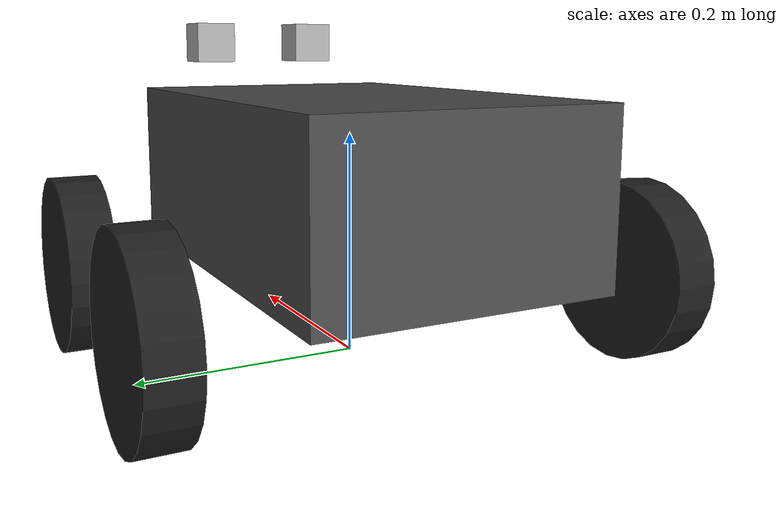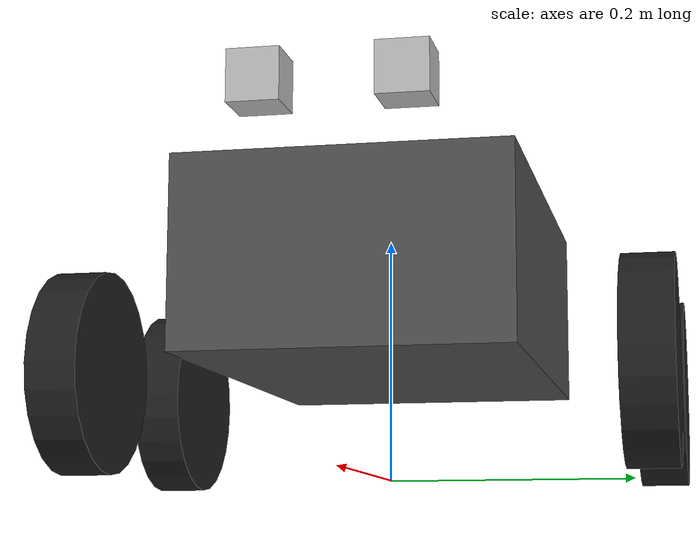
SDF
<sdf version='1.7'>
  <model name='ov_rover'>
    <link name='base_footprint'>
      <inertial>
        <pose>0 0 0.16 0 -0 0</pose>
        <mass>2.5</mass>
        <inertia>
          <ixx>0.04</ixx>
          <ixy>0</ixy>
          <ixz>0</ixz>
          <iyy>0.04</iyy>
          <iyz>0</iyz>
          <izz>0.05</izz>
        </inertia>
      </inertial>
      <collision name='base_footprint_fixed_joint_lump__base_link_collision'>
        <pose>0 0 0.16 0 -0 0</pose>
        <geometry>
          <box>
            <size>0.4 0.26 0.15</size>
          </box>
        </geometry>
        <surface>
          <contact>
            <ode/>
          </contact>
          <friction>
            <ode/>
          </friction>
        </surface>
      </collision>
      <visual name='base_footprint_fixed_joint_lump__base_link_visual'>
        <pose>0 0 0.16 0 -0 0</pose>
        <geometry>
          <box>
            <size>0.4 0.26 0.15</size>
          </box>
        </geometry>
        <material>
          <script>
            <name>Gazebo/DarkGrey</name>
            <uri>file://media/materials/scripts/gazebo.material</uri>
          </script>
        </material>
      </visual>
      <visual name='base_footprint_fixed_joint_lump__cam0_link_visual_1'>
        <pose>0.22 0.055 0.28 0 -0 0</pose>
        <geometry>
          <box>
            <size>0.04 0.04 0.04</size>
          </box>
        </geometry>
      </visual>
      <visual name='base_footprint_fixed_joint_lump__cam1_link_visual_2'>
        <pose>0.22 -0.055 0.28 0 -0 0</pose>
        <geometry>
          <box>
            <size>0.04 0.04 0.04</size>
          </box>
        </geometry>
      </visual>
      <sensor name='cam0_sensor' type='camera'>
        <always_on>1</always_on>
        <update_rate>20</update_rate>
        <camera name='cam0'>
          <horizontal_fov>1.57</horizontal_fov>
          <image>
            <width>640</width>
            <height>400</height>
            <format>R8G8B8</format>
          </image>
          <clip>
            <near>0.05</near>
            <far>50</far>
          </clip>
          <noise>
            <type>gaussian</type>
            <mean>0</mean>
            <stddev>0.0</stddev>
          </noise>
        </camera>
        <plugin name='cam0_driver' filename='libgazebo_ros_camera.so'>
          <camera_name>cam0</camera_name>
          <frame_name>cam0_link</frame_name>
        </plugin>
        <pose>0.22 0.055 0.28 0 -0 0</pose>
      </sensor>
      <sensor name='cam1_sensor' type='camera'>
        <always_on>1</always_on>
        <update_rate>20</update_rate>
        <camera name='cam1'>
          <horizontal_fov>1.57</horizontal_fov>
          <image>
            <width>640</width>
            <height>400</height>
            <format>R8G8B8</format>
          </image>
          <clip>
            <near>0.05</near>
            <far>50</far>
          </clip>
          <noise>
            <type>gaussian</type>
            <mean>0</mean>
            <stddev>0.0</stddev>
          </noise>
        </camera>
        <plugin name='cam1_driver' filename='libgazebo_ros_camera.so'>
          <camera_name>cam1</camera_name>
          <frame_name>cam1_link</frame_name>
        </plugin>
        <pose>0.22 -0.055 0.28 0 -0 0</pose>
      </sensor>
      <sensor name='imu_sensor' type='imu'>
        <always_on>1</always_on>
        <update_rate>200</update_rate>
        <imu>
          <angular_velocity>
            <x>
              <noise type='gaussian'>
                <mean>0</mean>
                <stddev>0.00017</stddev>
              </noise>
            </x>
            <y>
              <noise type='gaussian'>
                <mean>0</mean>
                <stddev>0.00017</stddev>
              </noise>
            </y>
            <z>
              <noise type='gaussian'>
                <mean>0</mean>
                <stddev>0.00017</stddev>
              </noise>
            </z>
          </angular_velocity>
          <linear_acceleration>
            <x>
              <noise type='gaussian'>
                <mean>0</mean>
                <stddev>0.002</stddev>
              </noise>
            </x>
            <y>
              <noise type='gaussian'>
                <mean>0</mean>
                <stddev>0.002</stddev>
              </noise>
            </y>
            <z>
              <noise type='gaussian'>
                <mean>0</mean>
                <stddev>0.002</stddev>
              </noise>
            </z>
          </linear_acceleration>
        </imu>
        <plugin name='imu_plugin' filename='libgazebo_ros_imu_sensor.so'>
          <ros>
            <remapping>~/out:=/imu0</remapping>
          </ros>
          <frame_name>imu_link</frame_name>
        </plugin>
        <pose>0 0 0.16 0 -0 0</pose>
      </sensor>
    </link>
    <joint name='wheel_front_left_joint' type='revolute'>
      <pose relative_to='base_footprint'>0.12 0.22 0.08 0 -0 0</pose>
      <parent>base_footprint</parent>
      <child>wheel_front_left_link</child>
      <axis>
        <xyz>0 1 0</xyz>
        <limit>
          <lower>-1e+16</lower>
          <upper>1e+16</upper>
        </limit>
        <dynamics>
          <spring_reference>0</spring_reference>
          <spring_stiffness>0</spring_stiffness>
        </dynamics>
      </axis>
    </joint>
    <link name='wheel_front_left_link'>
      <pose relative_to='wheel_front_left_joint'>0 0 0 0 -0 0</pose>
      <inertial>
        <pose>0 0 0 0 -0 0</pose>
        <mass>0.35</mass>
        <inertia>
          <ixx>0.00061</ixx>
          <ixy>0</ixy>
          <ixz>0</ixz>
          <iyy>0.00112</iyy>
          <iyz>0</iyz>
          <izz>0.00061</izz>
        </inertia>
      </inertial>
      <collision name='wheel_front_left_link_collision'>
        <pose>0 0 0 1.5708 -0 0</pose>
        <geometry>
          <cylinder>
            <length>0.04</length>
            <radius>0.08</radius>
          </cylinder>
        </geometry>
        <surface>
          <contact>
            <ode>
              <kp>1e+05</kp>
              <kd>10</kd>
            </ode>
          </contact>
          <friction>
            <ode>
              <mu>1</mu>
              <mu2>1</mu2>
            </ode>
          </friction>
        </surface>
      </collision>
      <visual name='wheel_front_left_link_visual'>
        <pose>0 0 0 1.5708 -0 0</pose>
        <geometry>
          <cylinder>
            <length>0.04</length>
            <radius>0.08</radius>
          </cylinder>
        </geometry>
        <material>
          <script>
            <name>Gazebo/Black</name>
            <uri>file://media/materials/scripts/gazebo.material</uri>
          </script>
        </material>
      </visual>
    </link>
    <joint name='wheel_front_right_joint' type='revolute'>
      <pose relative_to='base_footprint'>0.12 -0.22 0.08 0 -0 0</pose>
      <parent>base_footprint</parent>
      <child>wheel_front_right_link</child>
      <axis>
        <xyz>0 1 0</xyz>
        <limit>
          <lower>-1e+16</lower>
          <upper>1e+16</upper>
        </limit>
        <dynamics>
          <spring_reference>0</spring_reference>
          <spring_stiffness>0</spring_stiffness>
        </dynamics>
      </axis>
    </joint>
    <link name='wheel_front_right_link'>
      <pose relative_to='wheel_front_right_joint'>0 0 0 0 -0 0</pose>
      <inertial>
        <pose>0 0 0 0 -0 0</pose>
        <mass>0.35</mass>
        <inertia>
          <ixx>0.00061</ixx>
          <ixy>0</ixy>
          <ixz>0</ixz>
          <iyy>0.00112</iyy>
          <iyz>0</iyz>
          <izz>0.00061</izz>
        </inertia>
      </inertial>
      <collision name='wheel_front_right_link_collision'>
        <pose>0 0 0 1.5708 -0 0</pose>
        <geometry>
          <cylinder>
            <length>0.04</length>
            <radius>0.08</radius>
          </cylinder>
        </geometry>
        <surface>
          <contact>
            <ode>
              <kp>1e+05</kp>
              <kd>10</kd>
            </ode>
          </contact>
          <friction>
            <ode>
              <mu>1</mu>
              <mu2>1</mu2>
            </ode>
          </friction>
        </surface>
      </collision>
      <visual name='wheel_front_right_link_visual'>
        <pose>0 0 0 1.5708 -0 0</pose>
        <geometry>
          <cylinder>
            <length>0.04</length>
            <radius>0.08</radius>
          </cylinder>
        </geometry>
        <material>
          <script>
            <name>Gazebo/Black</name>
            <uri>file://media/materials/scripts/gazebo.material</uri>
          </script>
        </material>
      </visual>
    </link>
    <joint name='wheel_rear_left_joint' type='revolute'>
      <pose relative_to='base_footprint'>-0.12 0.22 0.08 0 -0 0</pose>
      <parent>base_footprint</parent>
      <child>wheel_rear_left_link</child>
      <axis>
        <xyz>0 1 0</xyz>
        <limit>
          <lower>-1e+16</lower>
          <upper>1e+16</upper>
        </limit>
        <dynamics>
          <spring_reference>0</spring_reference>
          <spring_stiffness>0</spring_stiffness>
        </dynamics>
      </axis>
    </joint>
    <link name='wheel_rear_left_link'>
      <pose relative_to='wheel_rear_left_joint'>0 0 0 0 -0 0</pose>
      <inertial>
        <pose>0 0 0 0 -0 0</pose>
        <mass>0.35</mass>
        <inertia>
          <ixx>0.00061</ixx>
          <ixy>0</ixy>
          <ixz>0</ixz>
          <iyy>0.00112</iyy>
          <iyz>0</iyz>
          <izz>0.00061</izz>
        </inertia>
      </inertial>
      <collision name='wheel_rear_left_link_collision'>
        <pose>0 0 0 1.5708 -0 0</pose>
        <geometry>
          <cylinder>
            <length>0.04</length>
            <radius>0.08</radius>
          </cylinder>
        </geometry>
        <surface>
          <contact>
            <ode>
              <kp>1e+05</kp>
              <kd>10</kd>
            </ode>
          </contact>
          <friction>
            <ode>
              <mu>1</mu>
              <mu2>1</mu2>
            </ode>
          </friction>
        </surface>
      </collision>
      <visual name='wheel_rear_left_link_visual'>
        <pose>0 0 0 1.5708 -0 0</pose>
        <geometry>
          <cylinder>
            <length>0.04</length>
            <radius>0.08</radius>
          </cylinder>
        </geometry>
        <material>
          <script>
            <name>Gazebo/Black</name>
            <uri>file://media/materials/scripts/gazebo.material</uri>
          </script>
        </material>
      </visual>
    </link>
    <joint name='wheel_rear_right_joint' type='revolute'>
      <pose relative_to='base_footprint'>-0.12 -0.22 0.08 0 -0 0</pose>
      <parent>base_footprint</parent>
      <child>wheel_rear_right_link</child>
      <axis>
        <xyz>0 1 0</xyz>
        <limit>
          <lower>-1e+16</lower>
          <upper>1e+16</upper>
        </limit>
        <dynamics>
          <spring_reference>0</spring_reference>
          <spring_stiffness>0</spring_stiffness>
        </dynamics>
      </axis>
    </joint>
    <link name='wheel_rear_right_link'>
      <pose relative_to='wheel_rear_right_joint'>0 0 0 0 -0 0</pose>
      <inertial>
        <pose>0 0 0 0 -0 0</pose>
        <mass>0.35</mass>
        <inertia>
          <ixx>0.00061</ixx>
          <ixy>0</ixy>
          <ixz>0</ixz>
          <iyy>0.00112</iyy>
          <iyz>0</iyz>
          <izz>0.00061</izz>
        </inertia>
      </inertial>
      <collision name='wheel_rear_right_link_collision'>
        <pose>0 0 0 1.5708 -0 0</pose>
        <geometry>
          <cylinder>
            <length>0.04</length>
            <radius>0.08</radius>
          </cylinder>
        </geometry>
        <surface>
          <contact>
            <ode>
              <kp>1e+05</kp>
              <kd>10</kd>
            </ode>
          </contact>
          <friction>
            <ode>
              <mu>1</mu>
              <mu2>1</mu2>
            </ode>
          </friction>
        </surface>
      </collision>
      <visual name='wheel_rear_right_link_visual'>
        <pose>0 0 0 1.5708 -0 0</pose>
        <geometry>
          <cylinder>
            <length>0.04</length>
            <radius>0.08</radius>
          </cylinder>
        </geometry>
        <material>
          <script>
            <name>Gazebo/Black</name>
            <uri>file://media/materials/scripts/gazebo.material</uri>
          </script>
        </material>
      </visual>
    </link>
    <plugin name='diff_drive' filename='libgazebo_ros_diff_drive.so'>
      <ros>
        <remapping>cmd_vel:=/cmd_vel</remapping>
        <remapping>odom:=/odom</remapping>
      </ros>
      <update_rate>50</update_rate>
      <num_wheel_pairs>2</num_wheel_pairs>
      <left_joint>wheel_front_left_joint</left_joint>
      <left_joint>wheel_rear_left_joint</left_joint>
      <right_joint>wheel_front_right_joint</right_joint>
      <right_joint>wheel_rear_right_joint</right_joint>
      <wheel_separation>0.44</wheel_separation>
      <wheel_separation>0.44</wheel_separation>
      <wheel_diameter>0.16</wheel_diameter>
      <wheel_diameter>0.16</wheel_diameter>
      <max_wheel_torque>1.0</max_wheel_torque>
      <max_wheel_acceleration>2.0</max_wheel_acceleration>
      <command_topic>cmd_vel</command_topic>
      <publish_odom>1</publish_odom>
      <publish_odom_tf>1</publish_odom_tf>
      <publish_wheel_tf>0</publish_wheel_tf>
      <odometry_topic>odom</odometry_topic>
      <odometry_frame>odom</odometry_frame>
      <robot_base_frame>base_footprint</robot_base_frame>
    </plugin>
    <static>0</static>
    <plugin name='joint_state' filename='libgazebo_ros_joint_state_publisher.so'>
      <ros>
        <remapping>~/out:=/joint_states</remapping>
      </ros>
      <update_rate>30</update_rate>
      <joint_name>wheel_front_left_joint</joint_name>
      <joint_name>wheel_rear_left_joint</joint_name>
      <joint_name>wheel_front_right_joint</joint_name>
      <joint_name>wheel_rear_right_joint</joint_name>
    </plugin>
  </model>
</sdf>
